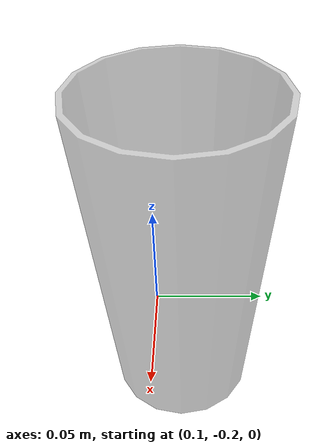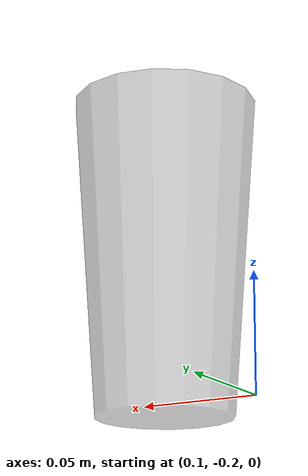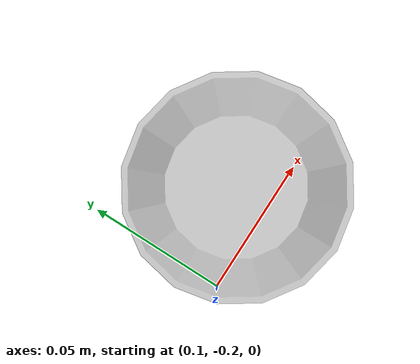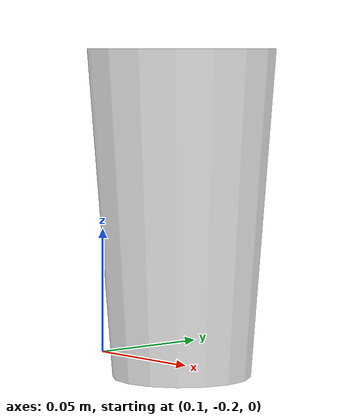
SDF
<?xml version='1.0'?>
<sdf version='1.7'>
  <model name='plastic_cup'>
    <model name='plastic_cup'>
      <link name='link'>
        <pose>0 0 0.065 0 -0 0</pose>
        <inertial>
          <mass>0.0599</mass>
          <inertia>
            <ixx>0.000302896</ixx>
            <ixy>0</ixy>
            <ixz>0</ixz>
            <iyy>0.000302896</iyy>
            <iyz>0</iyz>
            <izz>3.28764e-05</izz>
          </inertia>
        </inertial>
        <collision name='collision'>
          <geometry>
            <mesh>
              <uri>model://plastic_cup/meshes/plastic_cup.dae</uri>
            </mesh>
          </geometry>
          <surface>
            <contact>
              <poissons_ratio>0.35</poissons_ratio>
              <elastic_modulus>3.10264e+09</elastic_modulus>
              <ode>
                <kp>100000</kp>
                <kd>100</kd>
                <max_vel>100</max_vel>
                <min_depth>0.001</min_depth>
              </ode>
            </contact>
            <friction>
              <torsional>
                <coefficient>1</coefficient>
                <use_patch_radius>0</use_patch_radius>
                <surface_radius>0.01</surface_radius>
              </torsional>
            </friction>
          </surface>
        </collision>
        <visual name='visual'>
          <geometry>
            <mesh>
              <uri>model://plastic_cup/meshes/plastic_cup.dae</uri>
            </mesh>
          </geometry>
          <material>
            <script>
              <uri>file://media/materials/scripts/gazebo.material</uri>
              <name>Gazebo/GreyTransparent</name>
            </script>
          </material>
        </visual>
      </link>
      <pose>0.133118 -0.194856 0 0 -0 0</pose>
    </model>
    <static>0</static>
    <allow_auto_disable>1</allow_auto_disable>
  </model>
</sdf>
